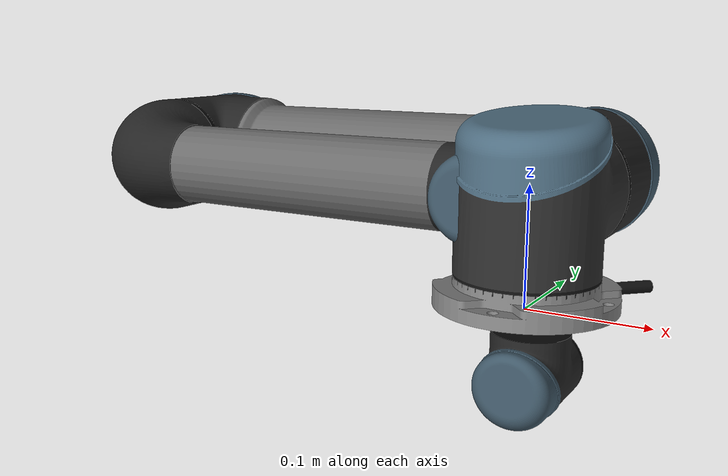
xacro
<?xml version="1.0"?>
<robot xmlns:xacro="http://www.ros.org/wiki/xacro"
       name="ur5" >

  <!-- common stuff -->
  <xacro:include filename="$(find ur_description)/urdf/gazebo.urdf.xacro" />

  <!-- ur5 -->
  <xacro:include filename="$(find ur_description)/urdf/ur5_limited.urdf.xacro" />

  <!-- arm -->
  <xacro:ur5_robot prefix="">
  </xacro:ur5_robot>

</robot>

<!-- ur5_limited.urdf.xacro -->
<robot xmlns:xacro="http://www.ros.org/wiki/xacro">

  <xacro:include filename="$(find ur_description)/urdf/ur5.transmission.xacro" />
  <xacro:include filename="$(find ur_description)/urdf/ur5.gazebo.xacro" />
  <xacro:include filename="$(find ur_description)/urdf/materials.urdf.xacro" />

  <property name="pi" value="3.14159265" />

<!-- Inertia parameters -->
  <property name="base_mass" value="4.0" /> <!-- Invented number, only matters for simulator -->
  <property name="shoulder_mass" value="3.7000" />
  <property name="upper_arm_mass" value="8.3930" />
  <property name="forearm_mass" value="2.2750" />
  <property name="wrist_1_mass" value="1.2190" />
  <property name="wrist_2_mass" value="1.2190" />
  <property name="wrist_3_mass" value="0.1879" />

  <property name="shoulder_cog" value="0.0 0.00193 -0.02561" />
  <property name="upper_arm_cog" value="0.0 -0.024201 0.2125" />
  <property name="forearm_cog" value="0.0 0.0265 0.11993" />       <!-- 0.119 is not half of 0.39225, is this really correct? -->
  <property name="wrist_1_cog" value="0.0 0.110949 0.01634" />
  <property name="wrist_2_cog" value="0.0 0.0018 0.11099" />
  <property name="wrist_3_cog" value="0.0 0.001159 0.0" />

<!-- Kinematic model -->
  <property name="shoulder_height" value="0.089159" />
  <property name="shoulder_offset" value="0.13585" />  <!-- shoulder_offset - elbow_offset + wrist_1_length = 0.10915 -->
  <property name="upper_arm_length" value="0.42500" />
  <property name="elbow_offset" value="0.1197" />       <!-- CAD measured -->
  <property name="forearm_length" value="0.39225" />
  <property name="wrist_1_length" value="0.093" />     <!-- CAD measured -->
  <property name="wrist_2_length" value="0.09465" />   <!-- In CAD this distance is 0.930, but in the spec it is 0.09465 -->
  <property name="wrist_3_length" value="0.0823" />

  <property name="shoulder_radius" value="0.060" />   <!-- manually measured -->
  <property name="upper_arm_radius" value="0.054" />  <!-- manually measured -->
  <property name="elbow_radius" value="0.060" />      <!-- manually measured -->
  <property name="forearm_radius" value="0.040" />    <!-- manually measured -->
  <property name="wrist_radius" value="0.045" />      <!-- manually measured -->

<xacro:macro name="ur5_robot" params="prefix">

  <link name="${prefix}base_link" >
    <visual>
      <geometry>
		    <mesh filename="package://ur_description/meshes/ur5/visual/Base.dae" />
      </geometry>
      <origin xyz="0.0 0.0 0.003" rpy="0.0 0.0 ${3.0 * pi / 4.0}" />
    </visual>
	<collision>
      <geometry>
        <mesh filename="package://ur_description/meshes/ur5/collision/Base.dae" />
      </geometry>
    </collision>
    <inertial>
      <mass value="${base_mass}" />
      <inertia ixx="1.0" ixy="0.0" ixz="0.0" iyy="1.0" iyz="0.0" izz="1.0"/>
    </inertial>
  </link>

  <joint name="${prefix}shoulder_pan_joint" type="revolute">
    <parent link="${prefix}base_link" />
    <child link = "${prefix}shoulder_link" />
    <origin xyz="0.0 0.0 ${shoulder_height}" rpy="0.0 0.0 0.0" />
    <axis xyz="0 0 1" />
    <limit lower="${-pi}" upper="${pi}" effort="150.0" velocity="${pi}"/>
    <dynamics damping="0.4" friction="0.0"/>
  </joint>

  <link name="${prefix}shoulder_link">
    <visual>
      <geometry>
        <mesh filename="package://ur_description/meshes/ur5/visual/Shoulder.dae" />
      </geometry>
    </visual>
    <collision>
      <geometry>
        <mesh filename="package://ur_description/meshes/ur5/collision/Shoulder.dae" />
      </geometry>
    </collision>
    <inertial>
      <mass value="${shoulder_mass}" />
      <inertia ixx="1.0" ixy="0.0" ixz="0.0" iyy="1.0" iyz="0.0" izz="1.0"/>
      <origin xyz="${shoulder_cog}" rpy="0.0 0.0 0.0" />
    </inertial>
  </link>

  <joint name="${prefix}shoulder_lift_joint" type="revolute">
    <parent link="${prefix}shoulder_link" />
    <child link = "${prefix}upper_arm_link" />
    <origin xyz="0.0 ${shoulder_offset} 0.0" rpy="0.0 ${pi / 2.0} 0.0" />
    <axis xyz="0 1 0" />
    <limit lower="${pi}" upper="${pi}" effort="150.0" velocity="${pi}"/>
    <dynamics damping="0.4" friction="0.0"/>
  </joint>

  <link name="${prefix}upper_arm_link">
    <visual>
      <geometry>
        <mesh filename="package://ur_description/meshes/ur5/visual/UpperArm.dae" />
      </geometry>
      <origin xyz="0.0 0.0 0.0" rpy="0.0 0.0 0.0" />
    </visual>
    <collision>
      <geometry>
        <mesh filename="package://ur_description/meshes/ur5/collision/UpperArm.dae" />
      </geometry>
    </collision>
    <inertial>
      <mass value="${upper_arm_mass}" />
      <inertia ixx="1.0" ixy="0.0" ixz="0.0" iyy="1.0" iyz="0.0" izz="1.0"/>
      <origin xyz="${upper_arm_cog}" rpy="0.0 0.0 0.0" />
    </inertial>
  </link>

  <joint name="${prefix}elbow_joint" type="revolute">
    <parent link="${prefix}upper_arm_link" />
    <child link = "${prefix}forearm_link" />
    <origin xyz="0.0 ${-elbow_offset} ${upper_arm_length}" rpy="0.0 0.0 0.0" />
    <axis xyz="0 1 0" />
    <limit lower="${pi}" upper="${pi}" effort="150.0" velocity="${pi}"/>
    <dynamics damping="0.4" friction="0.0"/>
  </joint>

  <link name="${prefix}forearm_link">
    <visual>
      <geometry>
        <mesh filename="package://ur_description/meshes/ur5/visual/Forearm.dae" />
      </geometry>
    </visual>
    <collision>
      <geometry>
        <mesh filename="package://ur_description/meshes/ur5/collision/Forearm.dae" />
      </geometry>
    </collision>
    <inertial>
      <mass value="${forearm_mass}" />
      <origin xyz="${forearm_cog}" rpy="0.0 0.0 0.0" />
      <inertia ixx="1.0" ixy="0.0" ixz="0.0" iyy="1.0" iyz="0.0" izz="1.0"/>
    </inertial>
  </link>

  <joint name="${prefix}wrist_1_joint" type="revolute">
    <parent link="${prefix}forearm_link" />
    <child link = "${prefix}wrist_1_link" />
    <origin xyz="0.0 0.0 ${forearm_length}" rpy="0.0 ${pi / 2.0} 0.0" />
    <axis xyz="0 1 0" />
    <limit lower="${-1.0 * pi}" upper="${0.25 * pi}" effort="28.0" velocity="${pi}"/>
    <dynamics damping="0.3" friction="0.0"/>
  </joint>

  <link name="${prefix}wrist_1_link">
    <visual>
      <geometry>
        <mesh filename="package://ur_description/meshes/ur5/visual/Wrist1.dae" />
      </geometry>
      <origin xyz="0.0 ${wrist_1_length} 0.0" rpy="0.0 ${pi / 2.0} 0.0" />
    </visual>
    <collision>
      <geometry>
        <mesh filename="package://ur_description/meshes/ur5/collision/Wrist1.dae" />
      </geometry>
      <origin rpy="0.0 1.570796325 0.0" xyz="0.0 0.093 0.0"/>
    </collision>
    <inertial>
      <mass value="${wrist_1_mass}" />
      <origin xyz="${wrist_1_cog}" rpy="0.0 0.0 0.0" />
      <inertia ixx="1.0" ixy="0.0" ixz="0.0" iyy="1.0" iyz="0.0" izz="1.0"/>
    </inertial>
  </link>

  <joint name="${prefix}wrist_2_joint" type="revolute">
    <parent link="${prefix}wrist_1_link" />
    <child link = "${prefix}wrist_2_link" />
    <origin xyz="0.0 ${wrist_1_length} 0.0" rpy="0.0 0.0 0.0" />
    <axis xyz="0 0 1" />
    <limit lower="${-1.0 * pi}" upper="${1.0 * pi}" effort="28.0" velocity="${pi}"/>
    <dynamics damping="0.3" friction="0.0"/>
  </joint>

  <link name="${prefix}wrist_2_link">
    <visual>
      <geometry>
        <mesh filename="package://ur_description/meshes/ur5/visual/Wrist2.dae" />
      </geometry>
      <origin xyz="0.0 0.0 ${wrist_2_length}" rpy="0.0 0.0 0.0" />
    </visual>
    <collision>
      <geometry>
        <mesh filename="package://ur_description/meshes/ur5/collision/Wrist2.dae" />
      </geometry>
       <origin rpy="0.0 0.0 0.0" xyz="0.0 0.0 0.09465"/>
    </collision>
    <inertial>
      <mass value="${wrist_2_mass}" />
      <origin xyz="${wrist_2_cog}" rpy="0.0 0.0 0.0" />
      <inertia ixx="1.0" ixy="0.0" ixz="0.0" iyy="1.0" iyz="0.0" izz="1.0"/>
    </inertial>
  </link>

  <joint name="${prefix}wrist_3_joint" type="revolute">
    <parent link="${prefix}wrist_2_link" />
    <child link = "${prefix}wrist_3_link" />
    <origin xyz="0.0 0.0 ${wrist_2_length}" rpy="0.0 0.0 0.0" />
    <axis xyz="0 1 0" />
    <limit lower="${-1.0 * pi}" upper="${1.0 * pi}" effort="28.0" velocity="${pi}"/>
    <dynamics damping="0.3" friction="0.0"/>
  </joint>

  <link name="${prefix}wrist_3_link">
    <visual>
      <geometry>
        <mesh filename="package://ur_description/meshes/ur5/visual/Wrist3.dae" />
      </geometry>
    </visual>
    <collision>
      <geometry>
        <mesh filename="package://ur_description/meshes/ur5/collision/Wrist3.dae" />
      </geometry>
    </collision>
    <inertial>
      <mass value="${wrist_3_mass}" />
      <origin xyz="${wrist_3_cog}" rpy="0.0 0.0 0.0" />
      <inertia ixx="1.0" ixy="0.0" ixz="0.0" iyy="1.0" iyz="0.0" izz="1.0"/>
    </inertial>
  </link>

  <joint name="${prefix}ee_fixed_joint" type="fixed">
    <parent link="${prefix}wrist_3_link" />
    <child link = "${prefix}ee_link" />
    <origin xyz="0.0 ${wrist_3_length} 0.0" rpy="0.0 0.0 ${pi/2.0}" />
  </joint>

  <link name="${prefix}ee_link" />

  <xacro:ur5_arm_transmission prefix="${prefix}" />
  <xacro:ur5_arm_gazebo prefix="${prefix}" />

  </xacro:macro>
</robot>

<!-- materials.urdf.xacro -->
<robot>

  <material name="UR/Blue">
    <color rgba="0.0 0.0 0.8 1.0"/>
  </material>

  <material name="UR/Grey">
    <color rgba="0.7 0.7 0.7 1.0"/>
  </material>

</robot>
